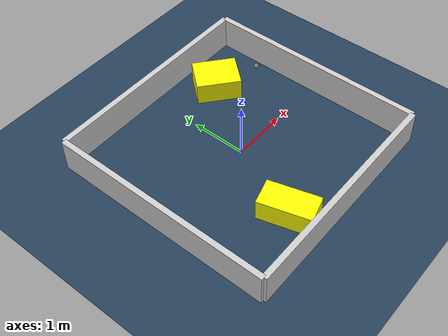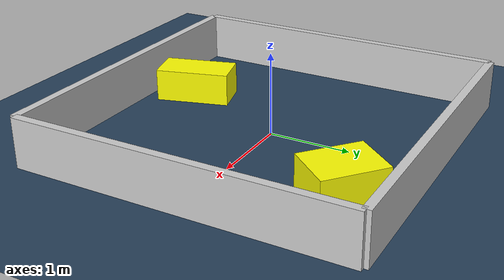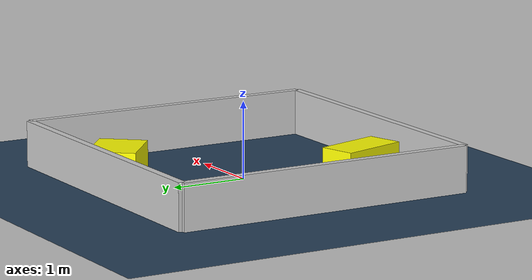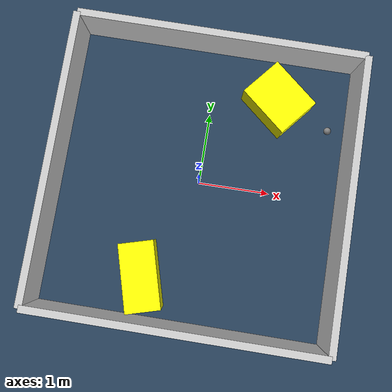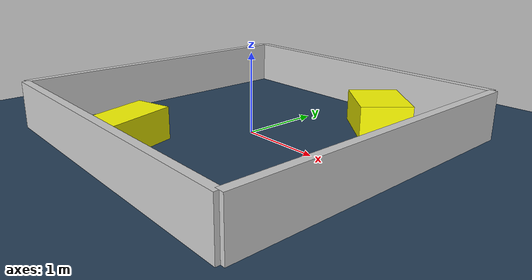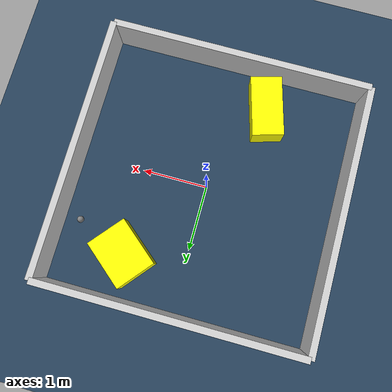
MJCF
<?xml version="1.0" ?>
<mujoco model="generated_environment">
  <option timestep="0.01" integrator="RK4" cone="elliptic"/>
  <default>
    <geom density="1"/>
  </default>
  <asset>
    <texture builtin="gradient" height="3072" rgb1="0.3 0.5 0.7" rgb2="0 0 0" type="skybox" width="512"/>
    <texture builtin="checker" height="300" mark="edge" markrgb="0.8 0.8 0.8" name="groundplane" rgb1="0.2 0.3 0.4" rgb2="0.1 0.2 0.3" type="2d" width="300"/>
    <material name="groundplane" reflectance="0.2" texrepeat="5 5" texture="groundplane" texuniform="true"/>
    <material name="robot" rgba="0.0 1.0 0.0 1"/>
  </asset>
  <worldbody>
    <light dir="0 0 -1" directional="true" pos="0 0 1.5"/>
    <geom condim="4" friction="1.0 0.005 0.001" material="groundplane" name="floor" size="0 0 0.05" type="plane"/>
    <body name="walls">
      <geom name="wall_1" condim="4" pos="-2.0 0.0 0.3" rgba="0.800000011920929 0.800000011920929 0.800000011920929 1.0" size="0.05 2.0 0.3" type="box"/>
      <geom name="wall_2" condim="4" pos="2.0 0.0 0.3" rgba="0.800000011920929 0.800000011920929 0.800000011920929 1.0" size="0.05 2.0 0.3" type="box"/>
      <geom name="wall_3" condim="4" pos="0.0 -2.0 0.3" rgba="0.800000011920929 0.800000011920929 0.800000011920929 1.0" size="2.0 0.05 0.3" type="box"/>
      <geom name="wall_4" condim="4" pos="0.0 2.0 0.3" rgba="0.800000011920929 0.800000011920929 0.800000011920929 1.0" size="2.0 0.05 0.3" type="box"/>
    </body>
    <body name="robot">
      <joint name="joint_x" type="slide" pos="0 0 0" axis="1 0 0"/>
      <joint name="joint_y" type="slide" pos="0 0 0" axis="0 1 0"/>
      <geom name="robot" type="sphere" pos="1.6699529536098288 0.9914480078317762 0.2" size="0.05" mass="5." friction="1.0 0.005 0.0001" condim="4"/>
      <site name="sensor_ball"/>
    </body>
    <body name="obstacle_1_movable">
      <geom name="obstacle_1_movable" condim="4" pos="-0.5767894690221538 -1.3919112563155576 0.2" euler="0 0 15.877294816595713" friction="1.0 0.005 0.001" rgba="1 1 0 1" size="0.238999197741673 0.46041962404269593 0.2" type="box" mass="0.1"/>
      <joint type="free"/>
    </body>
    <body name="obstacle_2_movable">
      <geom name="obstacle_2_movable" condim="4" pos="0.9169382704016913 1.3132292145840223 0.2" euler="0 0 320.08016366528335" friction="1.0 0.005 0.001" rgba="1 1 0 1" size="0.3926609218327144 0.3151608186030565 0.2" type="box" mass="0.1"/>
      <joint type="free"/>
    </body>
  </worldbody>
  <actuator>
    <motor name="actuator_x" joint="joint_x" gear="1" ctrlrange="-1 1"/>
    <motor name="actuator_y" joint="joint_y" gear="1" ctrlrange="-1 1"/>
  </actuator>
</mujoco>
